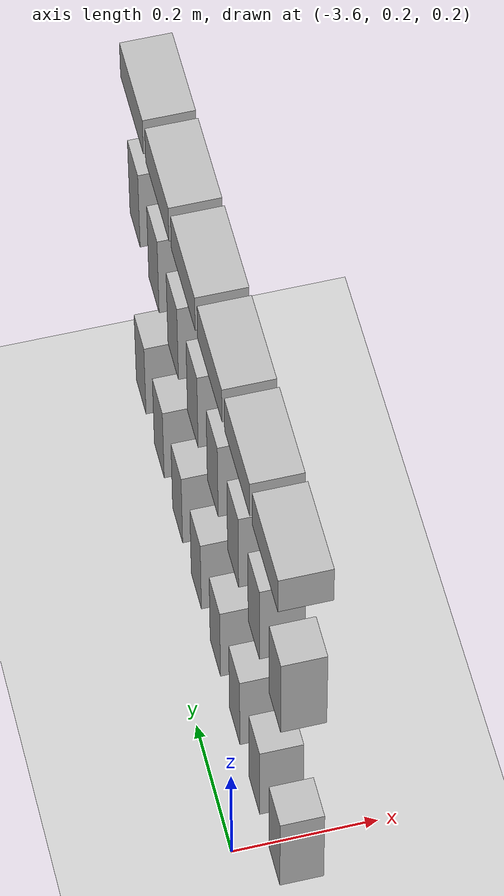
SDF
<sdf version="1.7">
 <world name="default">
  <model name="ground_plane">
   <static>1</static>
   <link name="link">
    <collision name="collision">
     <geometry><plane><normal>0 0 1</normal><size>100 100</size></plane></geometry>
     <surface>
      <contact><collide_bitmask>65535</collide_bitmask></contact>
      <friction><ode><mu>100</mu><mu2>50</mu2></ode></friction>
     </surface>
    </collision>
    <visual name="visual">
     <cast_shadows>0</cast_shadows>
     <geometry><plane><normal>0 0 1</normal><size>100 100</size></plane></geometry>
     <material>
      <script><uri>file://media/materials/scripts/gazebo.material</uri><name>Gazebo/Grey</name></script>
     </material>
    </visual>
   </link>
  </model>
  <model name="AH_shelf_filled_0">
   <static>1</static>
   <model name="board1">
    <pose>0 0.5 0.25 0 -0 0</pose>
    <static>0</static>
    <link name="AH_hagelslag_puur::link_0">
     <inertial>
      <mass>0.1</mass>
      <inertia><ixx>0.0014</ixx><ixy>0</ixy><ixz>0</ixz><iyy>0.0014</iyy><iyz>0</iyz><izz>0.0028</izz></inertia>
     </inertial>
     <pose>0.111111 0 0 0 -0 1.57</pose>
     <visual name="visual">
      <geometry>
       <mesh><uri>model://AH_hagelslag_puur/AH_hagelslag_puur/AH_hagelslag_puur.dae</uri><scale>1 1 1</scale></mesh>
      </geometry>
     </visual>
     <collision name="collision">
      <geometry>
       <mesh><uri>model://AH_hagelslag_puur/AH_hagelslag_puur/AH_hagelslag_puur.dae</uri><scale>1 1 1</scale></mesh>
      </geometry>
      <surface>
       <friction>
        <ode><mu>1</mu><mu2>1</mu2><fdir1>0 0 0</fdir1><slip1>0</slip1><slip2>0</slip2></ode>
        <torsional>
         <coefficient>1</coefficient>
         <patch_radius>0</patch_radius>
         <surface_radius>0</surface_radius>
         <use_patch_radius>1</use_patch_radius>
         <ode><slip>0</slip></ode>
        </torsional>
       </friction>
       <bounce><restitution_coefficient>0</restitution_coefficient><threshold>1e+06</threshold></bounce>
       <contact>
        <collide_without_contact>0</collide_without_contact>
        <collide_without_contact_bitmask>1</collide_without_contact_bitmask>
        <collide_bitmask>1</collide_bitmask>
        <ode>
         <soft_cfm>0</soft_cfm>
         <soft_erp>0.2</soft_erp>
         <kp>1e+13</kp>
         <kd>1</kd>
         <max_vel>0.01</max_vel>
         <min_depth>0</min_depth>
        </ode>
        <bullet>
         <split_impulse>1</split_impulse>
         <split_impulse_penetration_threshold>-0.01</split_impulse_penetration_threshold>
         <soft_cfm>0</soft_cfm>
         <soft_erp>0.2</soft_erp>
         <kp>1e+13</kp>
         <kd>1</kd>
        </bullet>
       </contact>
      </surface>
     </collision>
    </link>
    <static>0</static>
    <link name="AH_hagelslag_puur::link_0">
     <inertial>
      <mass>0.1</mass>
      <inertia><ixx>0.0014</ixx><ixy>0</ixy><ixz>0</ixz><iyy>0.0014</iyy><iyz>0</iyz><izz>0.0028</izz></inertia>
     </inertial>
     <pose>0.222222 0 0 0 -0 1.57</pose>
     <visual name="visual">
      <geometry>
       <mesh><uri>model://AH_hagelslag_puur/AH_hagelslag_puur/AH_hagelslag_puur.dae</uri><scale>1 1 1</scale></mesh>
      </geometry>
     </visual>
     <collision name="collision">
      <geometry>
       <mesh><uri>model://AH_hagelslag_puur/AH_hagelslag_puur/AH_hagelslag_puur.dae</uri><scale>1 1 1</scale></mesh>
      </geometry>
      <surface>
       <friction>
        <ode><mu>1</mu><mu2>1</mu2><fdir1>0 0 0</fdir1><slip1>0</slip1><slip2>0</slip2></ode>
        <torsional>
         <coefficient>1</coefficient>
         <patch_radius>0</patch_radius>
         <surface_radius>0</surface_radius>
         <use_patch_radius>1</use_patch_radius>
         <ode><slip>0</slip></ode>
        </torsional>
       </friction>
       <bounce><restitution_coefficient>0</restitution_coefficient><threshold>1e+06</threshold></bounce>
       <contact>
        <collide_without_contact>0</collide_without_contact>
        <collide_without_contact_bitmask>1</collide_without_contact_bitmask>
        <collide_bitmask>1</collide_bitmask>
        <ode>
         <soft_cfm>0</soft_cfm>
         <soft_erp>0.2</soft_erp>
         <kp>1e+13</kp>
         <kd>1</kd>
         <max_vel>0.01</max_vel>
         <min_depth>0</min_depth>
        </ode>
        <bullet>
         <split_impulse>1</split_impulse>
         <split_impulse_penetration_threshold>-0.01</split_impulse_penetration_threshold>
         <soft_cfm>0</soft_cfm>
         <soft_erp>0.2</soft_erp>
         <kp>1e+13</kp>
         <kd>1</kd>
        </bullet>
       </contact>
      </surface>
     </collision>
    </link>
    <static>0</static>
    <link name="AH_hagelslag_puur::link_0">
     <inertial>
      <mass>0.1</mass>
      <inertia><ixx>0.0014</ixx><ixy>0</ixy><ixz>0</ixz><iyy>0.0014</iyy><iyz>0</iyz><izz>0.0028</izz></inertia>
     </inertial>
     <pose>0.333333 0 0 0 -0 1.57</pose>
     <visual name="visual">
      <geometry>
       <mesh><uri>model://AH_hagelslag_puur/AH_hagelslag_puur/AH_hagelslag_puur.dae</uri><scale>1 1 1</scale></mesh>
      </geometry>
     </visual>
     <collision name="collision">
      <geometry>
       <mesh><uri>model://AH_hagelslag_puur/AH_hagelslag_puur/AH_hagelslag_puur.dae</uri><scale>1 1 1</scale></mesh>
      </geometry>
      <surface>
       <friction>
        <ode><mu>1</mu><mu2>1</mu2><fdir1>0 0 0</fdir1><slip1>0</slip1><slip2>0</slip2></ode>
        <torsional>
         <coefficient>1</coefficient>
         <patch_radius>0</patch_radius>
         <surface_radius>0</surface_radius>
         <use_patch_radius>1</use_patch_radius>
         <ode><slip>0</slip></ode>
        </torsional>
       </friction>
       <bounce><restitution_coefficient>0</restitution_coefficient><threshold>1e+06</threshold></bounce>
       <contact>
        <collide_without_contact>0</collide_without_contact>
        <collide_without_contact_bitmask>1</collide_without_contact_bitmask>
        <collide_bitmask>1</collide_bitmask>
        <ode>
         <soft_cfm>0</soft_cfm>
         <soft_erp>0.2</soft_erp>
         <kp>1e+13</kp>
         <kd>1</kd>
         <max_vel>0.01</max_vel>
         <min_depth>0</min_depth>
        </ode>
        <bullet>
         <split_impulse>1</split_impulse>
         <split_impulse_penetration_threshold>-0.01</split_impulse_penetration_threshold>
         <soft_cfm>0</soft_cfm>
         <soft_erp>0.2</soft_erp>
         <kp>1e+13</kp>
         <kd>1</kd>
        </bullet>
       </contact>
      </surface>
     </collision>
    </link>
    <static>0</static>
    <link name="AH_hagelslag_puur::link_0">
     <inertial>
      <mass>0.1</mass>
      <inertia><ixx>0.0014</ixx><ixy>0</ixy><ixz>0</ixz><iyy>0.0014</iyy><iyz>0</iyz><izz>0.0028</izz></inertia>
     </inertial>
     <pose>0.444444 0 0 0 -0 1.57</pose>
     <visual name="visual">
      <geometry>
       <mesh><uri>model://AH_hagelslag_puur/AH_hagelslag_puur/AH_hagelslag_puur.dae</uri><scale>1 1 1</scale></mesh>
      </geometry>
     </visual>
     <collision name="collision">
      <geometry>
       <mesh><uri>model://AH_hagelslag_puur/AH_hagelslag_puur/AH_hagelslag_puur.dae</uri><scale>1 1 1</scale></mesh>
      </geometry>
      <surface>
       <friction>
        <ode><mu>1</mu><mu2>1</mu2><fdir1>0 0 0</fdir1><slip1>0</slip1><slip2>0</slip2></ode>
        <torsional>
         <coefficient>1</coefficient>
         <patch_radius>0</patch_radius>
         <surface_radius>0</surface_radius>
         <use_patch_radius>1</use_patch_radius>
         <ode><slip>0</slip></ode>
        </torsional>
       </friction>
       <bounce><restitution_coefficient>0</restitution_coefficient><threshold>1e+06</threshold></bounce>
       <contact>
        <collide_without_contact>0</collide_without_contact>
        <collide_without_contact_bitmask>1</collide_without_contact_bitmask>
        <collide_bitmask>1</collide_bitmask>
        <ode>
         <soft_cfm>0</soft_cfm>
         <soft_erp>0.2</soft_erp>
         <kp>1e+13</kp>
         <kd>1</kd>
         <max_vel>0.01</max_vel>
         <min_depth>0</min_depth>
        </ode>
        <bullet>
         <split_impulse>1</split_impulse>
         <split_impulse_penetration_threshold>-0.01</split_impulse_penetration_threshold>
         <soft_cfm>0</soft_cfm>
         <soft_erp>0.2</soft_erp>
         <kp>1e+13</kp>
         <kd>1</kd>
        </bullet>
       </contact>
      </surface>
     </collision>
    </link>
    <static>0</static>
    <link name="AH_hagelslag_puur::link_0">
     <inertial>
      <mass>0.1</mass>
      <inertia><ixx>0.0014</ixx><ixy>0</ixy><ixz>0</ixz><iyy>0.0014</iyy><iyz>0</iyz><izz>0.0028</izz></inertia>
     </inertial>
     <pose>0.555556 0 0 0 -0 1.57</pose>
     <visual name="visual">
      <geometry>
       <mesh><uri>model://AH_hagelslag_puur/AH_hagelslag_puur/AH_hagelslag_puur.dae</uri><scale>1 1 1</scale></mesh>
      </geometry>
     </visual>
     <collision name="collision">
      <geometry>
       <mesh><uri>model://AH_hagelslag_puur/AH_hagelslag_puur/AH_hagelslag_puur.dae</uri><scale>1 1 1</scale></mesh>
      </geometry>
      <surface>
       <friction>
        <ode><mu>1</mu><mu2>1</mu2><fdir1>0 0 0</fdir1><slip1>0</slip1><slip2>0</slip2></ode>
        <torsional>
         <coefficient>1</coefficient>
         <patch_radius>0</patch_radius>
         <surface_radius>0</surface_radius>
         <use_patch_radius>1</use_patch_radius>
         <ode><slip>0</slip></ode>
        </torsional>
       </friction>
       <bounce><restitution_coefficient>0</restitution_coefficient><threshold>1e+06</threshold></bounce>
       <contact>
        <collide_without_contact>0</collide_without_contact>
        <collide_without_contact_bitmask>1</collide_without_contact_bitmask>
        <collide_bitmask>1</collide_bitmask>
        <ode>
         <soft_cfm>0</soft_cfm>
         <soft_erp>0.2</soft_erp>
         <kp>1e+13</kp>
         <kd>1</kd>
         <max_vel>0.01</max_vel>
         <min_depth>0</min_depth>
        </ode>
        <bullet>
         <split_impulse>1</split_impulse>
         <split_impulse_penetration_threshold>-0.01</split_impulse_penetration_threshold>
         <soft_cfm>0</soft_cfm>
         <soft_erp>0.2</soft_erp>
         <kp>1e+13</kp>
         <kd>1</kd>
        </bullet>
       </contact>
      </surface>
     </collision>
    </link>
    <static>0</static>
    <link name="AH_hagelslag_puur::link_0">
     <inertial>
      <mass>0.1</mass>
      <inertia><ixx>0.0014</ixx><ixy>0</ixy><ixz>0</ixz><iyy>0.0014</iyy><iyz>0</iyz><izz>0.0028</izz></inertia>
     </inertial>
     <pose>0.666667 0 0 0 -0 1.57</pose>
     <visual name="visual">
      <geometry>
       <mesh><uri>model://AH_hagelslag_puur/AH_hagelslag_puur/AH_hagelslag_puur.dae</uri><scale>1 1 1</scale></mesh>
      </geometry>
     </visual>
     <collision name="collision">
      <geometry>
       <mesh><uri>model://AH_hagelslag_puur/AH_hagelslag_puur/AH_hagelslag_puur.dae</uri><scale>1 1 1</scale></mesh>
      </geometry>
      <surface>
       <friction>
        <ode><mu>1</mu><mu2>1</mu2><fdir1>0 0 0</fdir1><slip1>0</slip1><slip2>0</slip2></ode>
        <torsional>
         <coefficient>1</coefficient>
         <patch_radius>0</patch_radius>
         <surface_radius>0</surface_radius>
         <use_patch_radius>1</use_patch_radius>
         <ode><slip>0</slip></ode>
        </torsional>
       </friction>
       <bounce><restitution_coefficient>0</restitution_coefficient><threshold>1e+06</threshold></bounce>
       <contact>
        <collide_without_contact>0</collide_without_contact>
        <collide_without_contact_bitmask>1</collide_without_contact_bitmask>
        <collide_bitmask>1</collide_bitmask>
        <ode>
         <soft_cfm>0</soft_cfm>
         <soft_erp>0.2</soft_erp>
         <kp>1e+13</kp>
         <kd>1</kd>
         <max_vel>0.01</max_vel>
         <min_depth>0</min_depth>
        </ode>
        <bullet>
         <split_impulse>1</split_impulse>
         <split_impulse_penetration_threshold>-0.01</split_impulse_penetration_threshold>
         <soft_cfm>0</soft_cfm>
         <soft_erp>0.2</soft_erp>
         <kp>1e+13</kp>
         <kd>1</kd>
        </bullet>
       </contact>
      </surface>
     </collision>
    </link>
    <static>0</static>
    <link name="AH_hagelslag_puur::link_0">
     <inertial>
      <mass>0.1</mass>
      <inertia><ixx>0.0014</ixx><ixy>0</ixy><ixz>0</ixz><iyy>0.0014</iyy><iyz>0</iyz><izz>0.0028</izz></inertia>
     </inertial>
     <pose>0.777778 0 0 0 -0 1.57</pose>
     <visual name="visual">
      <geometry>
       <mesh><uri>model://AH_hagelslag_puur/AH_hagelslag_puur/AH_hagelslag_puur.dae</uri><scale>1 1 1</scale></mesh>
      </geometry>
     </visual>
     <collision name="collision">
      <geometry>
       <mesh><uri>model://AH_hagelslag_puur/AH_hagelslag_puur/AH_hagelslag_puur.dae</uri><scale>1 1 1</scale></mesh>
      </geometry>
      <surface>
       <friction>
        <ode><mu>1</mu><mu2>1</mu2><fdir1>0 0 0</fdir1><slip1>0</slip1><slip2>0</slip2></ode>
        <torsional>
         <coefficient>1</coefficient>
         <patch_radius>0</patch_radius>
         <surface_radius>0</surface_radius>
         <use_patch_radius>1</use_patch_radius>
         <ode><slip>0</slip></ode>
        </torsional>
       </friction>
       <bounce><restitution_coefficient>0</restitution_coefficient><threshold>1e+06</threshold></bounce>
       <contact>
        <collide_without_contact>0</collide_without_contact>
        <collide_without_contact_bitmask>1</collide_without_contact_bitmask>
        <collide_bitmask>1</collide_bitmask>
        <ode>
         <soft_cfm>0</soft_cfm>
         <soft_erp>0.2</soft_erp>
         <kp>1e+13</kp>
         <kd>1</kd>
         <max_vel>0.01</max_vel>
         <min_depth>0</min_depth>
        </ode>
        <bullet>
         <split_impulse>1</split_impulse>
         <split_impulse_penetration_threshold>-0.01</split_impulse_penetration_threshold>
         <soft_cfm>0</soft_cfm>
         <soft_erp>0.2</soft_erp>
         <kp>1e+13</kp>
         <kd>1</kd>
        </bullet>
       </contact>
      </surface>
     </collision>
    </link>
    <static>0</static>
    <link name="AH_hagelslag_puur::link_0">
     <inertial>
      <mass>0.1</mass>
      <inertia><ixx>0.0014</ixx><ixy>0</ixy><ixz>0</ixz><iyy>0.0014</iyy><iyz>0</iyz><izz>0.0028</izz></inertia>
     </inertial>
     <pose>0.888889 0 0 0 -0 1.57</pose>
     <visual name="visual">
      <geometry>
       <mesh><uri>model://AH_hagelslag_puur/AH_hagelslag_puur/AH_hagelslag_puur.dae</uri><scale>1 1 1</scale></mesh>
      </geometry>
     </visual>
     <collision name="collision">
      <geometry>
       <mesh><uri>model://AH_hagelslag_puur/AH_hagelslag_puur/AH_hagelslag_puur.dae</uri><scale>1 1 1</scale></mesh>
      </geometry>
      <surface>
       <friction>
        <ode><mu>1</mu><mu2>1</mu2><fdir1>0 0 0</fdir1><slip1>0</slip1><slip2>0</slip2></ode>
        <torsional>
         <coefficient>1</coefficient>
         <patch_radius>0</patch_radius>
         <surface_radius>0</surface_radius>
         <use_patch_radius>1</use_patch_radius>
         <ode><slip>0</slip></ode>
        </torsional>
       </friction>
       <bounce><restitution_coefficient>0</restitution_coefficient><threshold>1e+06</threshold></bounce>
       <contact>
        <collide_without_contact>0</collide_without_contact>
        <collide_without_contact_bitmask>1</collide_without_contact_bitmask>
        <collide_bitmask>1</collide_bitmask>
        <ode>
         <soft_cfm>0</soft_cfm>
         <soft_erp>0.2</soft_erp>
         <kp>1e+13</kp>
         <kd>1</kd>
         <max_vel>0.01</max_vel>
         <min_depth>0</min_depth>
        </ode>
        <bullet>
         <split_impulse>1</split_impulse>
         <split_impulse_penetration_threshold>-0.01</split_impulse_penetration_threshold>
         <soft_cfm>0</soft_cfm>
         <soft_erp>0.2</soft_erp>
         <kp>1e+13</kp>
         <kd>1</kd>
        </bullet>
       </contact>
      </surface>
     </collision>
    </link>
   </model>
   <model name="board2">
    <pose>0 0.5 0.65 0 -0 0</pose>
    <static>0</static>
    <link name="AH_hagelslag_melk::link_0">
     <inertial>
      <mass>0.1</mass>
      <inertia><ixx>0.0014</ixx><ixy>0</ixy><ixz>0</ixz><iyy>0.0014</iyy><iyz>0</iyz><izz>0.0028</izz></inertia>
     </inertial>
     <pose>0.111111 0 0 0 -0 1.57</pose>
     <visual name="visual">
      <geometry>
       <mesh><uri>model://AH_hagelslag_melk/AH_hagelslag_melk/AH_hagelslag_melk.dae</uri><scale>1 1 1</scale></mesh>
      </geometry>
     </visual>
     <collision name="collision">
      <geometry>
       <mesh><uri>model://AH_hagelslag_melk/AH_hagelslag_melk/AH_hagelslag_melk.dae</uri><scale>1 1 1</scale></mesh>
      </geometry>
      <surface>
       <friction>
        <ode><mu>1</mu><mu2>1</mu2><fdir1>0 0 0</fdir1><slip1>0</slip1><slip2>0</slip2></ode>
        <torsional>
         <coefficient>1</coefficient>
         <patch_radius>0</patch_radius>
         <surface_radius>0</surface_radius>
         <use_patch_radius>1</use_patch_radius>
         <ode><slip>0</slip></ode>
        </torsional>
       </friction>
       <bounce><restitution_coefficient>0</restitution_coefficient><threshold>1e+06</threshold></bounce>
       <contact>
        <collide_without_contact>0</collide_without_contact>
        <collide_without_contact_bitmask>1</collide_without_contact_bitmask>
        <collide_bitmask>1</collide_bitmask>
        <ode>
         <soft_cfm>0</soft_cfm>
         <soft_erp>0.2</soft_erp>
         <kp>1e+13</kp>
         <kd>1</kd>
         <max_vel>0.01</max_vel>
         <min_depth>0</min_depth>
        </ode>
        <bullet>
         <split_impulse>1</split_impulse>
         <split_impulse_penetration_threshold>-0.01</split_impulse_penetration_threshold>
         <soft_cfm>0</soft_cfm>
         <soft_erp>0.2</soft_erp>
         <kp>1e+13</kp>
         <kd>1</kd>
        </bullet>
       </contact>
      </surface>
     </collision>
    </link>
    <static>0</static>
    <link name="AH_hagelslag_melk::link_0">
     <inertial>
      <mass>0.1</mass>
      <inertia><ixx>0.0014</ixx><ixy>0</ixy><ixz>0</ixz><iyy>0.0014</iyy><iyz>0</iyz><izz>0.0028</izz></inertia>
     </inertial>
     <pose>0.222222 0 0 0 -0 1.57</pose>
     <visual name="visual">
      <geometry>
       <mesh><uri>model://AH_hagelslag_melk/AH_hagelslag_melk/AH_hagelslag_melk.dae</uri><scale>1 1 1</scale></mesh>
      </geometry>
     </visual>
     <collision name="collision">
      <geometry>
       <mesh><uri>model://AH_hagelslag_melk/AH_hagelslag_melk/AH_hagelslag_melk.dae</uri><scale>1 1 1</scale></mesh>
      </geometry>
      <surface>
       <friction>
        <ode><mu>1</mu><mu2>1</mu2><fdir1>0 0 0</fdir1><slip1>0</slip1><slip2>0</slip2></ode>
        <torsional>
         <coefficient>1</coefficient>
         <patch_radius>0</patch_radius>
         <surface_radius>0</surface_radius>
         <use_patch_radius>1</use_patch_radius>
         <ode><slip>0</slip></ode>
        </torsional>
       </friction>
       <bounce><restitution_coefficient>0</restitution_coefficient><threshold>1e+06</threshold></bounce>
       <contact>
        <collide_without_contact>0</collide_without_contact>
        <collide_without_contact_bitmask>1</collide_without_contact_bitmask>
        <collide_bitmask>1</collide_bitmask>
        <ode>
         <soft_cfm>0</soft_cfm>
         <soft_erp>0.2</soft_erp>
         <kp>1e+13</kp>
         <kd>1</kd>
         <max_vel>0.01</max_vel>
         <min_depth>0</min_depth>
        </ode>
        <bullet>
         <split_impulse>1</split_impulse>
         <split_impulse_penetration_threshold>-0.01</split_impulse_penetration_threshold>
         <soft_cfm>0</soft_cfm>
         <soft_erp>0.2</soft_erp>
         <kp>1e+13</kp>
         <kd>1</kd>
        </bullet>
       </contact>
      </surface>
     </collision>
    </link>
    <static>0</static>
    <link name="AH_hagelslag_melk::link_0">
     <inertial>
      <mass>0.1</mass>
      <inertia><ixx>0.0014</ixx><ixy>0</ixy><ixz>0</ixz><iyy>0.0014</iyy><iyz>0</iyz><izz>0.0028</izz></inertia>
     </inertial>
     <pose>0.333333 0 0 0 -0 1.57</pose>
     <visual name="visual">
      <geometry>
       <mesh><uri>model://AH_hagelslag_melk/AH_hagelslag_melk/AH_hagelslag_melk.dae</uri><scale>1 1 1</scale></mesh>
      </geometry>
     </visual>
     <collision name="collision">
      <geometry>
       <mesh><uri>model://AH_hagelslag_melk/AH_hagelslag_melk/AH_hagelslag_melk.dae</uri><scale>1 1 1</scale></mesh>
      </geometry>
      <surface>
       <friction>
        <ode><mu>1</mu><mu2>1</mu2><fdir1>0 0 0</fdir1><slip1>0</slip1><slip2>0</slip2></ode>
        <torsional>
         <coefficient>1</coefficient>
         <patch_radius>0</patch_radius>
         <surface_radius>0</surface_radius>
         <use_patch_radius>1</use_patch_radius>
         <ode><slip>0</slip></ode>
        </torsional>
       </friction>
       <bounce><restitution_coefficient>0</restitution_coefficient><threshold>1e+06</threshold></bounce>
       <contact>
        <collide_without_contact>0</collide_without_contact>
        <collide_without_contact_bitmask>1</collide_without_contact_bitmask>
        <collide_bitmask>1</collide_bitmask>
        <ode>
         <soft_cfm>0</soft_cfm>
         <soft_erp>0.2</soft_erp>
         <kp>1e+13</kp>
         <kd>1</kd>
         <max_vel>0.01</max_vel>
         <min_depth>0</min_depth>
        </ode>
        <bullet>
         <split_impulse>1</split_impulse>
         <split_impulse_penetration_threshold>-0.01</split_impulse_penetration_threshold>
         <soft_cfm>0</soft_cfm>
         <soft_erp>0.2</soft_erp>
         <kp>1e+13</kp>
         <kd>1</kd>
        </bullet>
       </contact>
      </surface>
     </collision>
    </link>
    <static>0</static>
    <link name="AH_hagelslag_melk::link_0">
     <inertial>
      <mass>0.1</mass>
      <inertia><ixx>0.0014</ixx><ixy>0</ixy><ixz>0</ixz><iyy>0.0014</iyy><iyz>0</iyz><izz>0.0028</izz></inertia>
     </inertial>
     <pose>0.444444 0 0 0 -0 1.57</pose>
     <visual name="visual">
      <geometry>
       <mesh><uri>model://AH_hagelslag_melk/AH_hagelslag_melk/AH_hagelslag_melk.dae</uri><scale>1 1 1</scale></mesh>
      </geometry>
     </visual>
     <collision name="collision">
      <geometry>
       <mesh><uri>model://AH_hagelslag_melk/AH_hagelslag_melk/AH_hagelslag_melk.dae</uri><scale>1 1 1</scale></mesh>
      </geometry>
      <surface>
       <friction>
        <ode><mu>1</mu><mu2>1</mu2><fdir1>0 0 0</fdir1><slip1>0</slip1><slip2>0</slip2></ode>
        <torsional>
         <coefficient>1</coefficient>
         <patch_radius>0</patch_radius>
         <surface_radius>0</surface_radius>
         <use_patch_radius>1</use_patch_radius>
         <ode><slip>0</slip></ode>
        </torsional>
       </friction>
       <bounce><restitution_coefficient>0</restitution_coefficient><threshold>1e+06</threshold></bounce>
       <contact>
        <collide_without_contact>0</collide_without_contact>
        <collide_without_contact_bitmask>1</collide_without_contact_bitmask>
        <collide_bitmask>1</collide_bitmask>
        <ode>
         <soft_cfm>0</soft_cfm>
         <soft_erp>0.2</soft_erp>
         <kp>1e+13</kp>
         <kd>1</kd>
         <max_vel>0.01</max_vel>
         <min_depth>0</min_depth>
        </ode>
        <bullet>
         <split_impulse>1</split_impulse>
         <split_impulse_penetration_threshold>-0.01</split_impulse_penetration_threshold>
         <soft_cfm>0</soft_cfm>
         <soft_erp>0.2</soft_erp>
         <kp>1e+13</kp>
         <kd>1</kd>
        </bullet>
       </contact>
      </surface>
     </collision>
    </link>
    <static>0</static>
    <link name="AH_hagelslag_melk::link_0">
     <inertial>
      <mass>0.1</mass>
      <inertia><ixx>0.0014</ixx><ixy>0</ixy><ixz>0</ixz><iyy>0.0014</iyy><iyz>0</iyz><izz>0.0028</izz></inertia>
     </inertial>
     <pose>0.555556 0 0 0 -0 1.57</pose>
     <visual name="visual">
      <geometry>
       <mesh><uri>model://AH_hagelslag_melk/AH_hagelslag_melk/AH_hagelslag_melk.dae</uri><scale>1 1 1</scale></mesh>
      </geometry>
     </visual>
     <collision name="collision">
      <geometry>
       <mesh><uri>model://AH_hagelslag_melk/AH_hagelslag_melk/AH_hagelslag_melk.dae</uri><scale>1 1 1</scale></mesh>
      </geometry>
      <surface>
       <friction>
        <ode><mu>1</mu><mu2>1</mu2><fdir1>0 0 0</fdir1><slip1>0</slip1><slip2>0</slip2></ode>
        <torsional>
         <coefficient>1</coefficient>
         <patch_radius>0</patch_radius>
         <surface_radius>0</surface_radius>
         <use_patch_radius>1</use_patch_radius>
         <ode><slip>0</slip></ode>
        </torsional>
       </friction>
       <bounce><restitution_coefficient>0</restitution_coefficient><threshold>1e+06</threshold></bounce>
       <contact>
        <collide_without_contact>0</collide_without_contact>
        <collide_without_contact_bitmask>1</collide_without_contact_bitmask>
        <collide_bitmask>1</collide_bitmask>
        <ode>
         <soft_cfm>0</soft_cfm>
         <soft_erp>0.2</soft_erp>
         <kp>1e+13</kp>
         <kd>1</kd>
         <max_vel>0.01</max_vel>
         <min_depth>0</min_depth>
        </ode>
        <bullet>
         <split_impulse>1</split_impulse>
         <split_impulse_penetration_threshold>-0.01</split_impulse_penetration_threshold>
         <soft_cfm>0</soft_cfm>
         <soft_erp>0.2</soft_erp>
         <kp>1e+13</kp>
         <kd>1</kd>
        </bullet>
       </contact>
      </surface>
     </collision>
    </link>
    <static>0</static>
    <link name="AH_hagelslag_melk::link_0">
     <inertial>
      <mass>0.1</mass>
      <inertia><ixx>0.0014</ixx><ixy>0</ixy><ixz>0</ixz><iyy>0.0014</iyy><iyz>0</iyz><izz>0.0028</izz></inertia>
     </inertial>
     <pose>0.666667 0 0 0 -0 1.57</pose>
     <visual name="visual">
      <geometry>
       <mesh><uri>model://AH_hagelslag_melk/AH_hagelslag_melk/AH_hagelslag_melk.dae</uri><scale>1 1 1</scale></mesh>
      </geometry>
     </visual>
     <collision name="collision">
      <geometry>
       <mesh><uri>model://AH_hagelslag_melk/AH_hagelslag_melk/AH_hagelslag_melk.dae</uri><scale>1 1 1</scale></mesh>
      </geometry>
      <surface>
       <friction>
        <ode><mu>1</mu><mu2>1</mu2><fdir1>0 0 0</fdir1><slip1>0</slip1><slip2>0</slip2></ode>
        <torsional>
         <coefficient>1</coefficient>
         <patch_radius>0</patch_radius>
         <surface_radius>0</surface_radius>
         <use_patch_radius>1</use_patch_radius>
         <ode><slip>0</slip></ode>
        </torsional>
       </friction>
       <bounce><restitution_coefficient>0</restitution_coefficient><threshold>1e+06</threshold></bounce>
       <contact>
        <collide_without_contact>0</collide_without_contact>
        <collide_without_contact_bitmask>1</collide_without_contact_bitmask>
        <collide_bitmask>1</collide_bitmask>
        <ode>
         <soft_cfm>0</soft_cfm>
         <soft_erp>0.2</soft_erp>
         <kp>1e+13</kp>
         <kd>1</kd>
         <max_vel>0.01</max_vel>
         <min_depth>0</min_depth>
        </ode>
        <bullet>
         <split_impulse>1</split_impulse>
         <split_impulse_penetration_threshold>-0.01</split_impulse_penetration_threshold>
         <soft_cfm>0</soft_cfm>
         <soft_erp>0.2</soft_erp>
         <kp>1e+13</kp>
         <kd>1</kd>
        </bullet>
       </contact>
      </surface>
     </collision>
    </link>
    <static>0</static>
    <link name="AH_hagelslag_melk::link_0">
     <inertial>
      <mass>0.1</mass>
      <inertia><ixx>0.0014</ixx><ixy>0</ixy><ixz>0</ixz><iyy>0.0014</iyy><iyz>0</iyz><izz>0.0028</izz></inertia>
     </inertial>
     <pose>0.777778 0 0 0 -0 1.57</pose>
     <visual name="visual">
      <geometry>
       <mesh><uri>model://AH_hagelslag_melk/AH_hagelslag_melk/AH_hagelslag_melk.dae</uri><scale>1 1 1</scale></mesh>
      </geometry>
     </visual>
     <collision name="collision">
      <geometry>
       <mesh><uri>model://AH_hagelslag_melk/AH_hagelslag_melk/AH_hagelslag_melk.dae</uri><scale>1 1 1</scale></mesh>
      </geometry>
      <surface>
       <friction>
        <ode><mu>1</mu><mu2>1</mu2><fdir1>0 0 0</fdir1><slip1>0</slip1><slip2>0</slip2></ode>
        <torsional>
         <coefficient>1</coefficient>
         <patch_radius>0</patch_radius>
         <surface_radius>0</surface_radius>
         <use_patch_radius>1</use_patch_radius>
         <ode><slip>0</slip></ode>
        </torsional>
       </friction>
       <bounce><restitution_coefficient>0</restitution_coefficient><threshold>1e+06</threshold></bounce>
       <contact>
        <collide_without_contact>0</collide_without_contact>
        <collide_without_contact_bitmask>1</collide_without_contact_bitmask>
        <collide_bitmask>1</collide_bitmask>
        <ode>
         <soft_cfm>0</soft_cfm>
         <soft_erp>0.2</soft_erp>
         <kp>1e+13</kp>
         <kd>1</kd>
         <max_vel>0.01</max_vel>
         <min_depth>0</min_depth>
        </ode>
        <bullet>
         <split_impulse>1</split_impulse>
         <split_impulse_penetration_threshold>-0.01</split_impulse_penetration_threshold>
         <soft_cfm>0</soft_cfm>
         <soft_erp>0.2</soft_erp>
         <kp>1e+13</kp>
         <kd>1</kd>
        </bullet>
       </contact>
      </surface>
     </collision>
    </link>
    <static>0</static>
    <link name="AH_hagelslag_melk::link_0">
     <inertial>
      <mass>0.1</mass>
      <inertia><ixx>0.0014</ixx><ixy>0</ixy><ixz>0</ixz><iyy>0.0014</iyy><iyz>0</iyz><izz>0.0028</izz></inertia>
     </inertial>
     <pose>0.888889 0 0 0 -0 1.57</pose>
     <visual name="visual">
      <geometry>
       <mesh><uri>model://AH_hagelslag_melk/AH_hagelslag_melk/AH_hagelslag_melk.dae</uri><scale>1 1 1</scale></mesh>
      </geometry>
     </visual>
     <collision name="collision">
      <geometry>
       <mesh><uri>model://AH_hagelslag_melk/AH_hagelslag_melk/AH_hagelslag_melk.dae</uri><scale>1 1 1</scale></mesh>
      </geometry>
      <surface>
       <friction>
        <ode><mu>1</mu><mu2>1</mu2><fdir1>0 0 0</fdir1><slip1>0</slip1><slip2>0</slip2></ode>
        <torsional>
         <coefficient>1</coefficient>
         <patch_radius>0</patch_radius>
         <surface_radius>0</surface_radius>
         <use_patch_radius>1</use_patch_radius>
         <ode><slip>0</slip></ode>
        </torsional>
       </friction>
       <bounce><restitution_coefficient>0</restitution_coefficient><threshold>1e+06</threshold></bounce>
       <contact>
        <collide_without_contact>0</collide_without_contact>
        <collide_without_contact_bitmask>1</collide_without_contact_bitmask>
        <collide_bitmask>1</collide_bitmask>
        <ode>
         <soft_cfm>0</soft_cfm>
         <soft_erp>0.2</soft_erp>
         <kp>1e+13</kp>
         <kd>1</kd>
         <max_vel>0.01</max_vel>
         <min_depth>0</min_depth>
        </ode>
        <bullet>
         <split_impulse>1</split_impulse>
         <split_impulse_penetration_threshold>-0.01</split_impulse_penetration_threshold>
         <soft_cfm>0</soft_cfm>
         <soft_erp>0.2</soft_erp>
         <kp>1e+13</kp>
         <kd>1</kd>
        </bullet>
       </contact>
      </surface>
     </collision>
    </link>
   </model>
   <model name="board3">
    <pose>0 0.5 0.9 0 -0 0</pose>
    <static>0</static>
    <link name="AH_thee_bosvruchten::link_0">
     <inertial>
      <mass>0.1</mass>
      <inertia><ixx>0.0014</ixx><ixy>0</ixy><ixz>0</ixz><iyy>0.0014</iyy><iyz>0</iyz><izz>0.0028</izz></inertia>
     </inertial>
     <pose>0.142857 0 0 0 -0 1.57</pose>
     <visual name="visual">
      <geometry>
       <mesh>
        <uri>model://AH_thee_bosvruchten/AH_thee_bosvruchten/AH_thee_bosvruchten.dae</uri>
        <scale>1 1 1</scale>
       </mesh>
      </geometry>
     </visual>
     <collision name="collision">
      <geometry>
       <mesh>
        <uri>model://AH_thee_bosvruchten/AH_thee_bosvruchten/AH_thee_bosvruchten.dae</uri>
        <scale>1 1 1</scale>
       </mesh>
      </geometry>
      <surface>
       <friction>
        <ode><mu>1</mu><mu2>1</mu2><fdir1>0 0 0</fdir1><slip1>0</slip1><slip2>0</slip2></ode>
        <torsional>
         <coefficient>1</coefficient>
         <patch_radius>0</patch_radius>
         <surface_radius>0</surface_radius>
         <use_patch_radius>1</use_patch_radius>
         <ode><slip>0</slip></ode>
        </torsional>
       </friction>
       <bounce><restitution_coefficient>0</restitution_coefficient><threshold>1e+06</threshold></bounce>
       <contact>
        <collide_without_contact>0</collide_without_contact>
        <collide_without_contact_bitmask>1</collide_without_contact_bitmask>
        <collide_bitmask>1</collide_bitmask>
        <ode>
         <soft_cfm>0</soft_cfm>
         <soft_erp>0.2</soft_erp>
         <kp>1e+13</kp>
         <kd>1</kd>
         <max_vel>0.01</max_vel>
         <min_depth>0</min_depth>
        </ode>
        <bullet>
         <split_impulse>1</split_impulse>
         <split_impulse_penetration_threshold>-0.01</split_impulse_penetration_threshold>
         <soft_cfm>0</soft_cfm>
         <soft_erp>0.2</soft_erp>
         <kp>1e+13</kp>
         <kd>1</kd>
        </bullet>
       </contact>
      </surface>
     </collision>
    </link>
    <static>0</static>
    <link name="AH_thee_bosvruchten::link_0">
     <inertial>
      <mass>0.1</mass>
      <inertia><ixx>0.0014</ixx><ixy>0</ixy><ixz>0</ixz><iyy>0.0014</iyy><iyz>0</iyz><izz>0.0028</izz></inertia>
     </inertial>
     <pose>0.285714 0 0 0 -0 1.57</pose>
     <visual name="visual">
      <geometry>
       <mesh>
        <uri>model://AH_thee_bosvruchten/AH_thee_bosvruchten/AH_thee_bosvruchten.dae</uri>
        <scale>1 1 1</scale>
       </mesh>
      </geometry>
     </visual>
     <collision name="collision">
      <geometry>
       <mesh>
        <uri>model://AH_thee_bosvruchten/AH_thee_bosvruchten/AH_thee_bosvruchten.dae</uri>
        <scale>1 1 1</scale>
       </mesh>
      </geometry>
      <surface>
       <friction>
        <ode><mu>1</mu><mu2>1</mu2><fdir1>0 0 0</fdir1><slip1>0</slip1><slip2>0</slip2></ode>
        <torsional>
         <coefficient>1</coefficient>
         <patch_radius>0</patch_radius>
         <surface_radius>0</surface_radius>
         <use_patch_radius>1</use_patch_radius>
         <ode><slip>0</slip></ode>
        </torsional>
       </friction>
       <bounce><restitution_coefficient>0</restitution_coefficient><threshold>1e+06</threshold></bounce>
       <contact>
        <collide_without_contact>0</collide_without_contact>
        <collide_without_contact_bitmask>1</collide_without_contact_bitmask>
        <collide_bitmask>1</collide_bitmask>
        <ode>
         <soft_cfm>0</soft_cfm>
         <soft_erp>0.2</soft_erp>
         <kp>1e+13</kp>
         <kd>1</kd>
         <max_vel>0.01</max_vel>
         <min_depth>0</min_depth>
        </ode>
        <bullet>
         <split_impulse>1</split_impulse>
         <split_impulse_penetration_threshold>-0.01</split_impulse_penetration_threshold>
         <soft_cfm>0</soft_cfm>
         <soft_erp>0.2</soft_erp>
         <kp>1e+13</kp>
         <kd>1</kd>
        </bullet>
       </contact>
      </surface>
     </collision>
    </link>
    <static>0</static>
    <link name="AH_thee_bosvruchten::link_0">
     <inertial>
      <mass>0.1</mass>
      <inertia><ixx>0.0014</ixx><ixy>0</ixy><ixz>0</ixz><iyy>0.0014</iyy><iyz>0</iyz><izz>0.0028</izz></inertia>
     </inertial>
     <pose>0.428571 0 0 0 -0 1.57</pose>
     <visual name="visual">
      <geometry>
       <mesh>
        <uri>model://AH_thee_bosvruchten/AH_thee_bosvruchten/AH_thee_bosvruchten.dae</uri>
        <scale>1 1 1</scale>
       </mesh>
      </geometry>
     </visual>
     <collision name="collision">
      <geometry>
       <mesh>
        <uri>model://AH_thee_bosvruchten/AH_thee_bosvruchten/AH_thee_bosvruchten.dae</uri>
        <scale>1 1 1</scale>
       </mesh>
      </geometry>
      <surface>
       <friction>
        <ode><mu>1</mu><mu2>1</mu2><fdir1>0 0 0</fdir1><slip1>0</slip1><slip2>0</slip2></ode>
        <torsional>
         <coefficient>1</coefficient>
         <patch_radius>0</patch_radius>
         <surface_radius>0</surface_radius>
         <use_patch_radius>1</use_patch_radius>
         <ode><slip>0</slip></ode>
        </torsional>
       </friction>
       <bounce><restitution_coefficient>0</restitution_coefficient><threshold>1e+06</threshold></bounce>
       <contact>
        <collide_without_contact>0</collide_without_contact>
        <collide_without_contact_bitmask>1</collide_without_contact_bitmask>
        <collide_bitmask>1</collide_bitmask>
        <ode>
         <soft_cfm>0</soft_cfm>
         <soft_erp>0.2</soft_erp>
         <kp>1e+13</kp>
         <kd>1</kd>
         <max_vel>0.01</max_vel>
         <min_depth>0</min_depth>
        </ode>
        <bullet>
         <split_impulse>1</split_impulse>
         <split_impulse_penetration_threshold>-0.01</split_impulse_penetration_threshold>
         <soft_cfm>0</soft_cfm>
         <soft_erp>0.2</soft_erp>
         <kp>1e+13</kp>
         <kd>1</kd>
        </bullet>
       </contact>
      </surface>
     </collision>
    </link>
    <static>0</static>
    <link name="AH_thee_bosvruchten::link_0">
     <inertial>
      <mass>0.1</mass>
      <inertia><ixx>0.0014</ixx><ixy>0</ixy><ixz>0</ixz><iyy>0.0014</iyy><iyz>0</iyz><izz>0.0028</izz></inertia>
     </inertial>
     <pose>0.571429 0 0 0 -0 1.57</pose>
     <visual name="visual">
      <geometry>
       <mesh>
        <uri>model://AH_thee_bosvruchten/AH_thee_bosvruchten/AH_thee_bosvruchten.dae</uri>
        <scale>1 1 1</scale>
       </mesh>
      </geometry>
     </visual>
     <collision name="collision">
      <geometry>
       <mesh>
        <uri>model://AH_thee_bosvruchten/AH_thee_bosvruchten/AH_thee_bosvruchten.dae</uri>
        <scale>1 1 1</scale>
       </mesh>
      </geometry>
      <surface>
       <friction>
        <ode><mu>1</mu><mu2>1</mu2><fdir1>0 0 0</fdir1><slip1>0</slip1><slip2>0</slip2></ode>
        <torsional>
         <coefficient>1</coefficient>
         <patch_radius>0</patch_radius>
         <surface_radius>0</surface_radius>
         <use_patch_radius>1</use_patch_radius>
         <ode><slip>0</slip></ode>
        </torsional>
       </friction>
       <bounce><restitution_coefficient>0</restitution_coefficient><threshold>1e+06</threshold></bounce>
       <contact>
        <collide_without_contact>0</collide_without_contact>
        <collide_without_contact_bitmask>1</collide_without_contact_bitmask>
        <collide_bitmask>1</collide_bitmask>
        <ode>
         <soft_cfm>0</soft_cfm>
         <soft_erp>0.2</soft_erp>
         <kp>1e+13</kp>
         <kd>1</kd>
         <max_vel>0.01</max_vel>
         <min_depth>0</min_depth>
        </ode>
        <bullet>
         <split_impulse>1</split_impulse>
         <split_impulse_penetration_threshold>-0.01</split_impulse_penetration_threshold>
         <soft_cfm>0</soft_cfm>
         <soft_erp>0.2</soft_erp>
         <kp>1e+13</kp>
         <kd>1</kd>
        </bullet>
       </contact>
      </surface>
     </collision>
    </link>
    <static>0</static>
    <link name="AH_thee_bosvruchten::link_0">
     <inertial>
      <mass>0.1</mass>
      <inertia><ixx>0.0014</ixx><ixy>0</ixy><ixz>0</ixz><iyy>0.0014</iyy><iyz>0</iyz><izz>0.0028</izz></inertia>
     </inertial>
     <pose>0.714286 0 0 0 -0 1.57</pose>
     <visual name="visual">
      <geometry>
       <mesh>
        <uri>model://AH_thee_bosvruchten/AH_thee_bosvruchten/AH_thee_bosvruchten.dae</uri>
        <scale>1 1 1</scale>
       </mesh>
      </geometry>
     </visual>
     <collision name="collision">
      <geometry>
       <mesh>
        <uri>model://AH_thee_bosvruchten/AH_thee_bosvruchten/AH_thee_bosvruchten.dae</uri>
        <scale>1 1 1</scale>
       </mesh>
      </geometry>
      <surface>
       <friction>
        <ode><mu>1</mu><mu2>1</mu2><fdir1>0 0 0</fdir1><slip1>0</slip1><slip2>0</slip2></ode>
        <torsional>
         <coefficient>1</coefficient>
         <patch_radius>0</patch_radius>
         <surface_radius>0</surface_radius>
         <use_patch_radius>1</use_patch_radius>
         <ode><slip>0</slip></ode>
        </torsional>
       </friction>
       <bounce><restitution_coefficient>0</restitution_coefficient><threshold>1e+06</threshold></bounce>
       <contact>
        <collide_without_contact>0</collide_without_contact>
        <collide_without_contact_bitmask>1</collide_without_contact_bitmask>
        <collide_bitmask>1</collide_bitmask>
        <ode>
         <soft_cfm>0</soft_cfm>
         <soft_erp>0.2</soft_erp>
         <kp>1e+13</kp>
         <kd>1</kd>
         <max_vel>0.01</max_vel>
         <min_depth>0</min_depth>
        </ode>
        <bullet>
         <split_impulse>1</split_impulse>
         <split_impulse_penetration_threshold>-0.01</split_impulse_penetration_threshold>
         <soft_cfm>0</soft_cfm>
         <soft_erp>0.2</soft_erp>
         <kp>1e+13</kp>
         <kd>1</kd>
        </bullet>
       </contact>
      </surface>
     </collision>
    </link>
    <static>0</static>
    <link name="AH_thee_bosvruchten::link_0">
     <inertial>
      <mass>0.1</mass>
      <inertia><ixx>0.0014</ixx><ixy>0</ixy><ixz>0</ixz><iyy>0.0014</iyy><iyz>0</iyz><izz>0.0028</izz></inertia>
     </inertial>
     <pose>0.857143 0 0 0 -0 1.57</pose>
     <visual name="visual">
      <geometry>
       <mesh>
        <uri>model://AH_thee_bosvruchten/AH_thee_bosvruchten/AH_thee_bosvruchten.dae</uri>
        <scale>1 1 1</scale>
       </mesh>
      </geometry>
     </visual>
     <collision name="collision">
      <geometry>
       <mesh>
        <uri>model://AH_thee_bosvruchten/AH_thee_bosvruchten/AH_thee_bosvruchten.dae</uri>
        <scale>1 1 1</scale>
       </mesh>
      </geometry>
      <surface>
       <friction>
        <ode><mu>1</mu><mu2>1</mu2><fdir1>0 0 0</fdir1><slip1>0</slip1><slip2>0</slip2></ode>
        <torsional>
         <coefficient>1</coefficient>
         <patch_radius>0</patch_radius>
         <surface_radius>0</surface_radius>
         <use_patch_radius>1</use_patch_radius>
         <ode><slip>0</slip></ode>
        </torsional>
       </friction>
       <bounce><restitution_coefficient>0</restitution_coefficient><threshold>1e+06</threshold></bounce>
       <contact>
        <collide_without_contact>0</collide_without_contact>
        <collide_without_contact_bitmask>1</collide_without_contact_bitmask>
        <collide_bitmask>1</collide_bitmask>
        <ode>
         <soft_cfm>0</soft_cfm>
         <soft_erp>0.2</soft_erp>
         <kp>1e+13</kp>
         <kd>1</kd>
         <max_vel>0.01</max_vel>
         <min_depth>0</min_depth>
        </ode>
        <bullet>
         <split_impulse>1</split_impulse>
         <split_impulse_penetration_threshold>-0.01</split_impulse_penetration_threshold>
         <soft_cfm>0</soft_cfm>
         <soft_erp>0.2</soft_erp>
         <kp>1e+13</kp>
         <kd>1</kd>
        </bullet>
       </contact>
      </surface>
     </collision>
    </link>
   </model>
   <pose>-4.01662 1.07063 0 0 0 -1.5708</pose>
  </model>
 </world>
</sdf>
